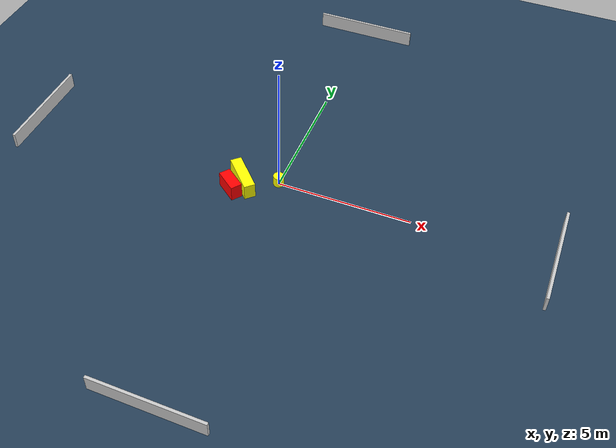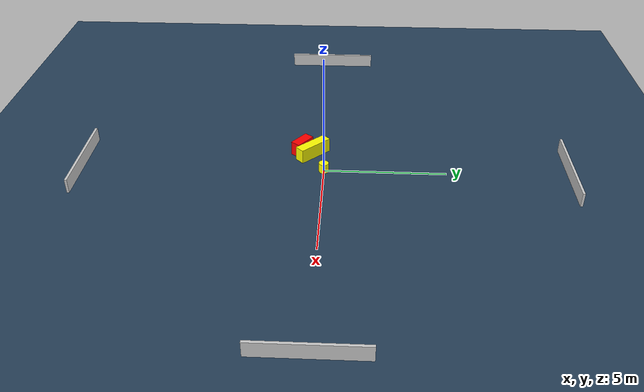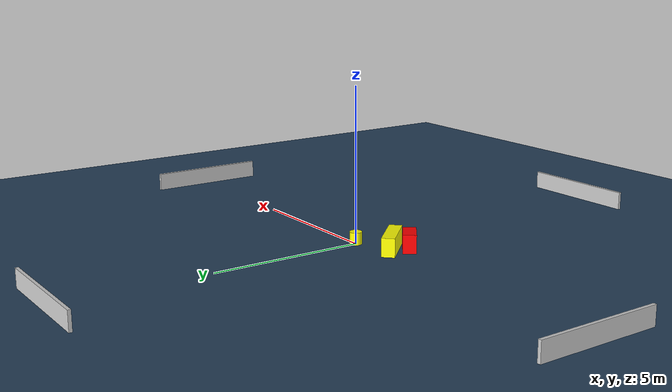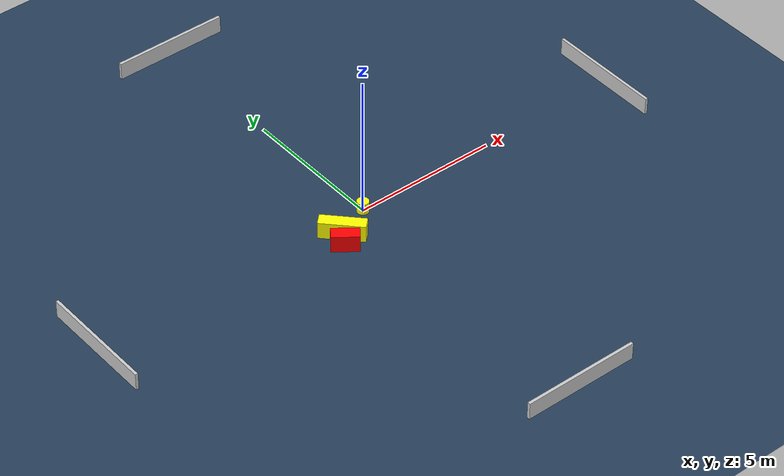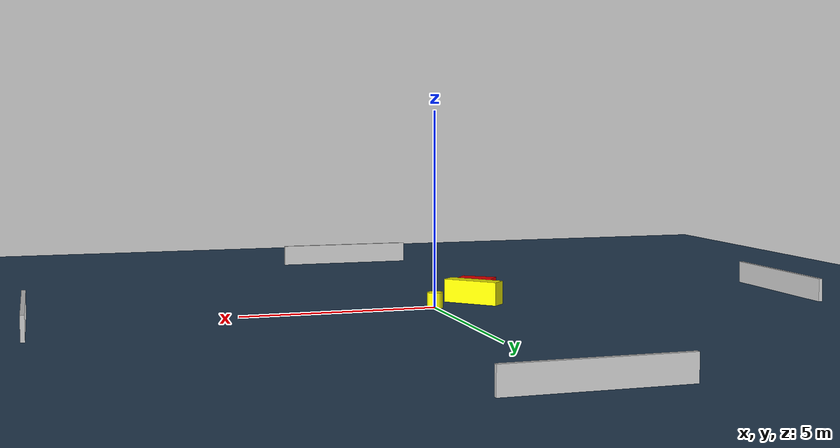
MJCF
<?xml version="1.0" ?>
<mujoco model="generated_environment">
  <option timestep="0.01" integrator="RK4" cone="elliptic"/>
  <default>
    <geom density="1"/>
  </default>
  <asset>
    <texture builtin="gradient" height="3072" name="skybox" rgb1="0.3 0.5 0.7" rgb2="0 0 0" type="skybox" width="512"/>
    <texture builtin="checker" height="300" name="groundplane" rgb1="0.2 0.3 0.4" rgb2="0.1 0.2 0.3" type="2d" width="300"/>
    <material name="groundplane" reflectance="0.2" texrepeat="5 5" texture="groundplane"/>
  </asset>
  <worldbody>
    <light dir="0 0 -1" directional="true" pos="0 0 1.5"/>
    <geom condim="3" friction="0.5 0.005 0.001" material="groundplane" name="floor" pos="0 0 0" size="0 0 0.05" type="plane"/>
    <body name="walls">
      <geom name="wall_1" condim="4" pos="-10.0 0.0 0.3" rgba="0.800000011920929 0.800000011920929 0.800000011920929 1.0" size="0.05 2.0 0.3" type="box"/>
      <geom name="wall_2" condim="4" pos="10.0 0.0 0.3" rgba="0.800000011920929 0.800000011920929 0.800000011920929 1.0" size="0.05 2.0 0.3" type="box"/>
      <geom name="wall_3" condim="4" pos="0.0 -10.0 0.3" rgba="0.800000011920929 0.800000011920929 0.800000011920929 1.0" size="2.0 0.05 0.3" type="box"/>
      <geom name="wall_4" condim="4" pos="0.0 10.0 0.3" rgba="0.800000011920929 0.800000011920929 0.800000011920929 1.0" size="2.0 0.05 0.3" type="box"/>
    </body>
    <body name="robot">
      <joint name="joint_x" type="slide" pos="0 0 0" axis="1 0 0"/>
      <joint name="joint_y" type="slide" pos="0 0 0" axis="0 1 0"/>
      <geom name="robot" type="cylinder" pos="0.0 0.0 0.2" size="0.2 0.2 0.0" mass="5.0" friction="1.0 0.005 0.0001" condim="4" rgba="1.0 1.0 0.0 1.0"/>
    </body>
    <body name="obstacle_1_movable">
      <geom name="obstacle_1_movable" condim="4" pos="-1.2051054336509754 -0.5049754169337666 0.3" euler="0 0 43.69830163066567" friction="0.0 0.005 0.001" rgba="1.0 1.0 0.0 1.0" size="0.20996938210258595 0.7518239359901748 0.3" type="box" mass="0.1"/>
      <joint type="free"/>
    </body>
    <body name="obstacle_2_static">
      <geom name="obstacle_2_static" condim="4" pos="-1.4740913097350519 -0.9780798489029168 0.3" euler="0 0 52.73444772904986" friction="0.0 0.005 0.001" rgba="1.0 0.0 0.0 1.0" size="0.21402288730869934 0.45595320936205647 0.3" type="box"/>
    </body>
  </worldbody>
  <actuator>
    <motor name="actuator_x" joint="joint_x" gear="1" ctrlrange="-1 1"/>
    <motor name="actuator_y" joint="joint_y" gear="1" ctrlrange="-1 1"/>
  </actuator>
</mujoco>
